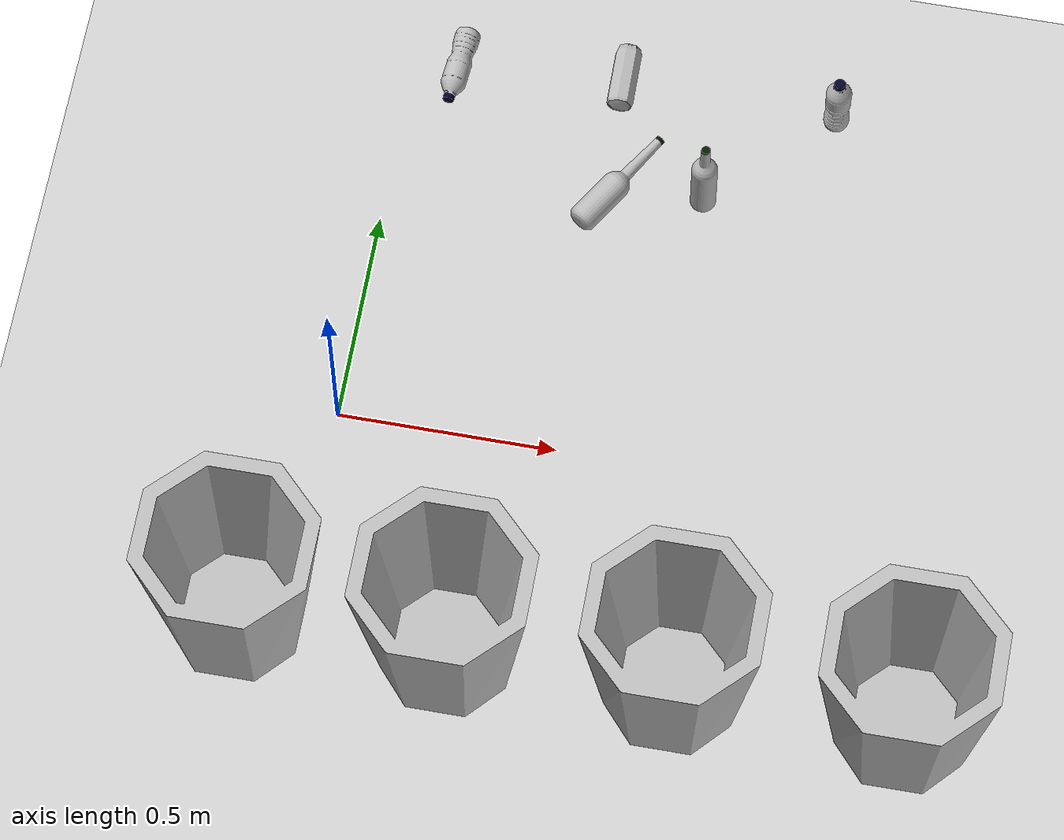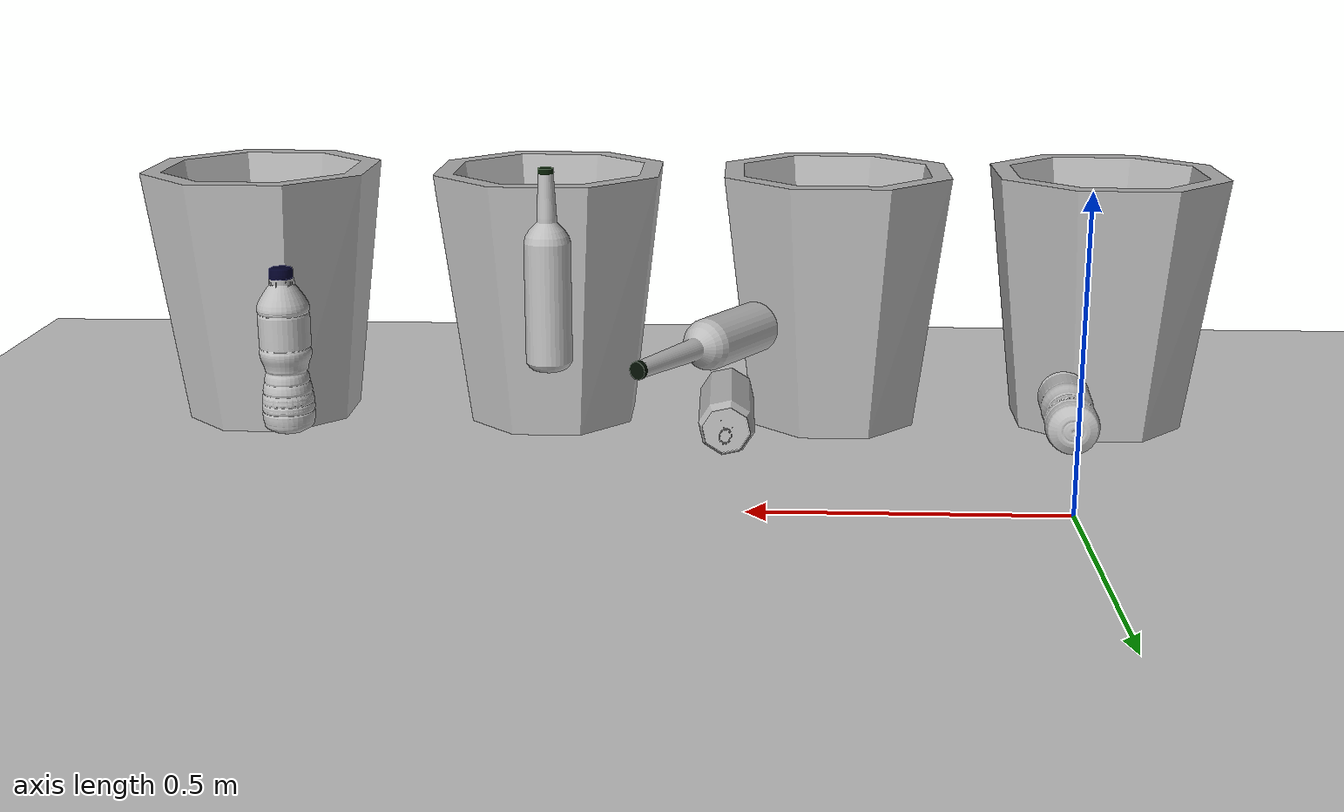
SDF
<sdf version="1.7">
 <world name="empty_world">
  <gravity>0 0 -9.8</gravity>
  <magnetic_field>6e-06 2.3e-05 -4.2e-05</magnetic_field>
  <atmosphere type="adiabatic"/>
  <physics type="ode">
   <max_step_size>0.001</max_step_size>
   <real_time_factor>1</real_time_factor>
   <real_time_update_rate>1000</real_time_update_rate>
  </physics>
  <scene><ambient>0.4 0.4 0.4 1</ambient><background>0.7 0.7 0.7 1</background><shadows>false</shadows></scene>
  <model name="Glass Bin">
   <static>true</static>
   <include><uri>model://recycle_bin_glass</uri></include>
   <pose>-0.12 -0.52 0.0 0 0 0</pose>
  </model>
  <model name="Metal Bin">
   <static>true</static>
   <include><uri>model://recycle_bin_metal</uri></include>
   <pose>0.35 -0.52 0.0 0 0 0</pose>
  </model>
  <model name="Paper Bin">
   <static>true</static>
   <include><uri>model://recycle_bin_paper</uri></include>
   <pose>0.85 -0.52 0.0 0 0 0</pose>
  </model>
  <model name="Plastic Bin">
   <static>true</static>
   <include><uri>model://recycle_bin_plastic</uri></include>
   <pose>1.36 -0.52 0.0 0 0 0</pose>
  </model>
  <model name="Plastic Bottle">
   <static>false</static>
   <include><uri>model://plastic_bottle</uri></include>
   <pose>01.0 0.74 0.36 0 0 0</pose>
  </model>
  <model name="Plastic Bottle 2">
   <static>false</static>
   <include><uri>model://plastic_bottle_lay</uri></include>
   <pose>0.15 0.73 0.36  0 0 1.49</pose>
  </model>
  <model name="Glass Bottle">
   <static>false</static>
   <include><uri>model://glass_bottle</uri></include>
   <pose>0.74 0.49 0.36 0 0 0</pose>
  </model>
  <model name="Glass Bottle 2">
   <static>false</static>
   <include><uri>model://glass_bottle_lay</uri></include>
   <pose>0.54 0.47 0.36 0 0 2.59</pose>
  </model>
  <model name="Pepsi can">
   <static>false</static>
   <include><uri>model://can_lay</uri></include>
   <pose>0.52 0.75 0.36 0 0 0</pose>
  </model>
  <model name="ground_plane">
   <static>true</static>
   <link name="link">
    <collision name="collision">
     <geometry><plane><normal>0 0 1</normal><size>100 100</size></plane></geometry>
    </collision>
    <visual name="visual">
     <geometry><plane><normal>0 0 1</normal><size>100 100</size></plane></geometry>
     <material><ambient>0.8 0.8 0.8 1</ambient><diffuse>0.8 0.8 0.8 1</diffuse></material>
    </visual>
   </link>
  </model>
  <light name="sun" type="directional">
   <pose>0 0 10 0 0 0</pose>
   <cast_shadows>false</cast_shadows>
   <intensity>1</intensity>
   <direction>-0.5 0.1 -0.9</direction>
   <diffuse>0.8 0.8 0.8 1</diffuse>
   <specular>0.2 0.2 0.2 1</specular>
  </light>
  <plugin name="ros_gz_attach" filename="libros_gz_attach_system.so"/>
 </world>
</sdf>

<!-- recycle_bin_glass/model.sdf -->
<sdf version="1.6">
  <model name="recycle_bin_glass">
    <link name="link">

      <inertial>

        <mass>0.1</mass>
        <inertia>
            <ixy>0</ixy>
            <ixz>0</ixz>
            <iyz>0</iyz>
            <ixx>0.05288</ixx>
            <iyy>0.05288</iyy>
            <izz>0.09132</izz>
          </inertia>
      </inertial>

      <collision name="collision">
        <geometry>
          <mesh>
            <uri>model://recycle_bin_glass/meshes/recycle_bin_glass.dae</uri>
            <scale>1 1 1</scale>
          </mesh>
        </geometry>

      </collision>

      <visual name="visual">
	    <geometry>
          <mesh>
            <uri>model://recycle_bin_glass/meshes/recycle_bin_glass.dae</uri>
          </mesh>
        </geometry>
      <meta> <layer> 1 </layer></meta>
</visual>
    </link>
  </model>
</sdf>

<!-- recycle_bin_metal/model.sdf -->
<sdf version="1.6">
  <model name="recycle_bin_metal">
    <link name="link">

      <inertial>

        <mass>0.1</mass>
        <inertia>
            <ixy>0</ixy>
            <ixz>0</ixz>
            <iyz>0</iyz>
            <ixx>0.05288</ixx>
            <iyy>0.05288</iyy>
            <izz>0.09132</izz>
          </inertia>
      </inertial>

      <collision name="collision">
        <geometry>
          <mesh>
            <uri>model://recycle_bin_metal/meshes/recycle_bin_metal.dae</uri>
            <scale>1 1 1</scale>
          </mesh>
        </geometry>

      </collision>

      <visual name="visual">
	    <geometry>
          <mesh>
            <uri>model://recycle_bin_metal/meshes/recycle_bin_metal.dae</uri>
          </mesh>
        </geometry>
      <meta> <layer> 1 </layer></meta>
</visual>
    </link>
  </model>
</sdf>

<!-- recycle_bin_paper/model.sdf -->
<sdf version="1.6">
  <model name="recycle_bin_paper">
    <link name="link">

      <inertial>

        <mass>0.1</mass>
        <inertia>
            <ixy>0</ixy>
            <ixz>0</ixz>
            <iyz>0</iyz>
            <ixx>0.05288</ixx>
            <iyy>0.05288</iyy>
            <izz>0.09132</izz>
          </inertia>
      </inertial>

      <collision name="collision">
        <geometry>
          <mesh>
            <uri>model://recycle_bin_paper/meshes/recycle_bin_paper.dae</uri>
            <scale>1 1 1</scale>
          </mesh>
        </geometry>

      </collision>

      <visual name="visual">
	    <geometry>
          <mesh>
            <uri>model://recycle_bin_paper/meshes/recycle_bin_paper.dae</uri>
          </mesh>
        </geometry>
      <meta> <layer> 1 </layer></meta>
</visual>
    </link>
  </model>
</sdf>

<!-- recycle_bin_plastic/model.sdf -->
<sdf version="1.6">
  <model name="recycle_bin_plastic">
    <link name="link">

      <inertial>

        <mass>0.1</mass>
        <inertia>
            <ixy>0</ixy>
            <ixz>0</ixz>
            <iyz>0</iyz>
            <ixx>0.05288</ixx>
            <iyy>0.05288</iyy>
            <izz>0.09132</izz>
          </inertia>
      </inertial>

      <collision name="collision">
        <geometry>
          <mesh>
            <uri>model://recycle_bin_plastic/meshes/recycle_bin_plastic.dae</uri>
            <scale>1 1 1</scale>
          </mesh>
        </geometry>

      </collision>

      <visual name="visual">
	    <geometry>
          <mesh>
            <uri>model://recycle_bin_plastic/meshes/recycle_bin_plastic.dae</uri>
          </mesh>
        </geometry>
      <meta> <layer> 1 </layer></meta>
</visual>
    </link>
  </model>
</sdf>

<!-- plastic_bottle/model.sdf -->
<sdf version="1.6">
  <model name="plastic_bottle">
    <link name="link">

      <inertial>

        <mass>0.1</mass>
        <inertia>
            <ixy>0</ixy>
            <ixz>0</ixz>
            <iyz>0</iyz>
            <ixx>0.05288</ixx>
            <iyy>0.05288</iyy>
            <izz>0.09132</izz>
          </inertia>
      </inertial>

      <collision name="collision">
        <geometry>
          <mesh>
            <uri>model://plastic_bottle/meshes/plastic_bottle.dae</uri>
            <scale>1 1 1</scale>
          </mesh>
        </geometry>

      </collision>

      <visual name="visual">
	    <geometry>
          <mesh>
            <uri>model://plastic_bottle/meshes/plastic_bottle.dae</uri>
          </mesh>
        </geometry>
      <meta> <layer> 1 </layer></meta>
</visual>
    </link>
  </model>
</sdf>

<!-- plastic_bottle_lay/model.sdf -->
<sdf version="1.6">
  <model name="plastic_bottle_lay">
    <link name="link">

      <inertial>

        <mass>0.1</mass>
        <inertia>
            <ixy>0</ixy>
            <ixz>0</ixz>
            <iyz>0</iyz>
            <ixx>0.05288</ixx>
            <iyy>0.05288</iyy>
            <izz>0.09132</izz>
          </inertia>
      </inertial>

      <collision name="collision">
        <geometry>
          <mesh>
            <uri>model://plastic_bottle_lay/meshes/plastic_bottle_lay.dae</uri>
            <scale>1 1 1</scale>
          </mesh>
        </geometry>

      </collision>

      <visual name="visual">
	    <geometry>
          <mesh>
            <uri>model://plastic_bottle_lay/meshes/plastic_bottle_lay.dae</uri>
          </mesh>
        </geometry>
      <meta> <layer> 1 </layer></meta>
</visual>
    </link>
  </model>
</sdf>

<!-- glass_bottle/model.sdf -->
<sdf version="1.6">
  <model name="glass_bottle">
    <link name="link">

      <inertial>

        <mass>0.1</mass>
        <inertia>
            <ixy>0</ixy>
            <ixz>0</ixz>
            <iyz>0</iyz>
            <ixx>0.05288</ixx>
            <iyy>0.05288</iyy>
            <izz>0.09132</izz>
          </inertia>
      </inertial>

      <collision name="collision">
        <geometry>
          <mesh>
            <uri>model://glass_bottle/meshes/glass_bottle.dae</uri>
            <scale>1 1 1</scale>
          </mesh>
        </geometry>

      </collision>

      <visual name="visual">
	    <geometry>
          <mesh>
            <uri>model://glass_bottle/meshes/glass_bottle.dae</uri>
          </mesh>
        </geometry>
      <meta> <layer> 1 </layer></meta>
</visual>
    </link>
  </model>
</sdf>

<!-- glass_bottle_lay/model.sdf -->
<sdf version="1.6">
  <model name="glass_bottle_lay">
    <link name="link">

      <inertial>

        <mass>0.1</mass>
        <inertia>
            <ixy>0</ixy>
            <ixz>0</ixz>
            <iyz>0</iyz>
            <ixx>0.05288</ixx>
            <iyy>0.05288</iyy>
            <izz>0.09132</izz>
          </inertia>
      </inertial>

      <collision name="collision">
        <geometry>
          <mesh>
            <uri>model://glass_bottle_lay/meshes/glass_bottle_lay.dae</uri>
            <scale>1 1 1</scale>
          </mesh>
        </geometry>

      </collision>

      <visual name="visual">
	    <geometry>
          <mesh>
            <uri>model://glass_bottle_lay/meshes/glass_bottle_lay.dae</uri>
          </mesh>
        </geometry>
      <meta> <layer> 1 </layer></meta>
</visual>
    </link>
  </model>
</sdf>

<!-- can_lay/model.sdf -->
<sdf version="1.6">
  <model name="can_lay">
    <link name="link">

      <inertial>

        <mass>0.1</mass>
        <inertia>
            <ixy>0</ixy>
            <ixz>0</ixz>
            <iyz>0</iyz>
            <ixx>0.05288</ixx>
            <iyy>0.05288</iyy>
            <izz>0.09132</izz>
          </inertia>
      </inertial>

      <collision name="collision">
        <geometry>
          <mesh>
            <uri>model://can_lay/meshes/can_lay.dae</uri>
            <scale>1 1 1</scale>
          </mesh>
        </geometry>

      </collision>

      <visual name="visual">
	    <geometry>
          <mesh>
            <uri>model://can_lay/meshes/can_lay.dae</uri>
          </mesh>
        </geometry>
      <meta> <layer> 1 </layer></meta>
</visual>
    </link>
  </model>
</sdf>
